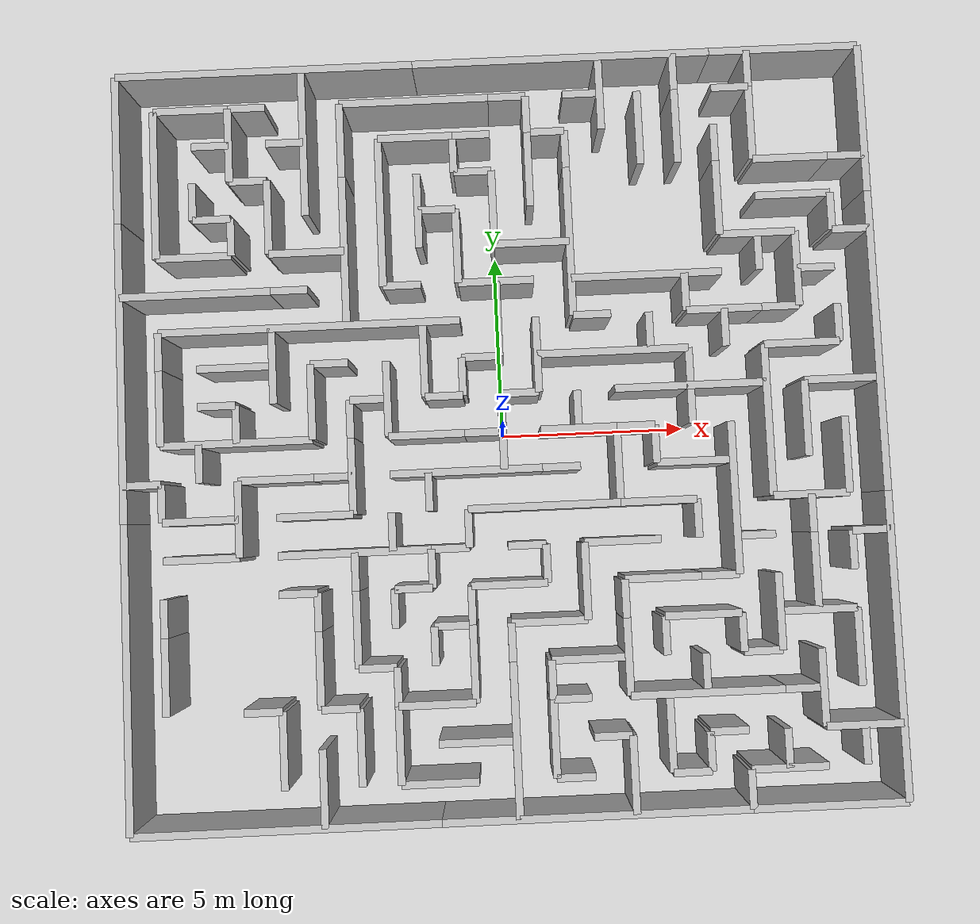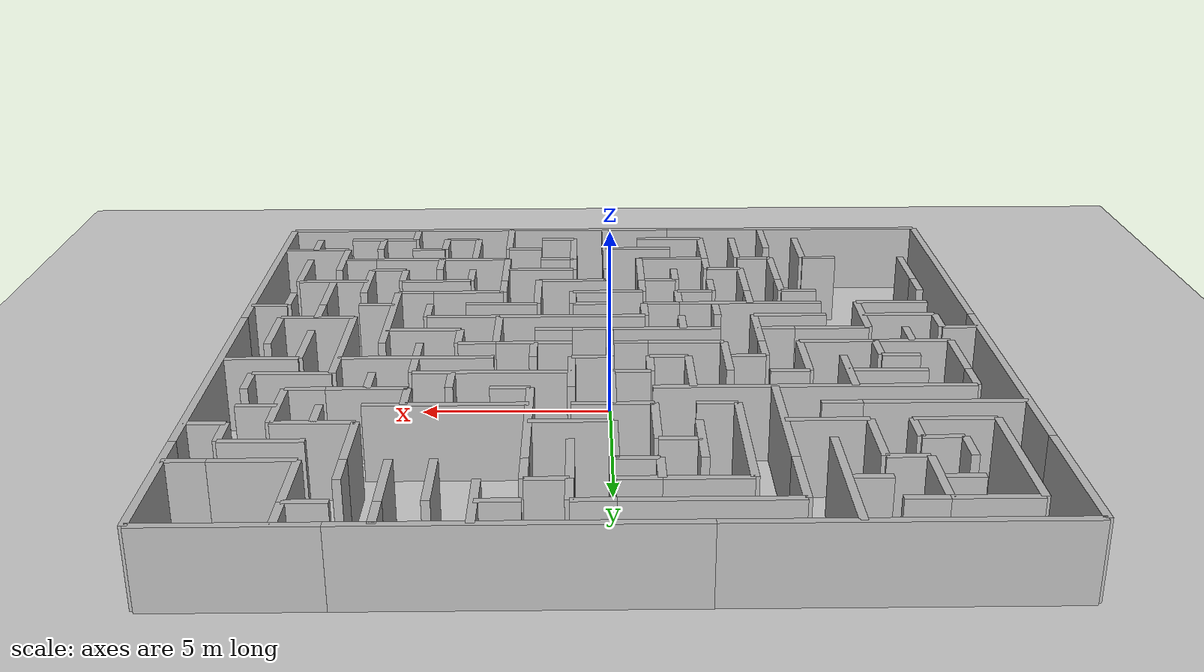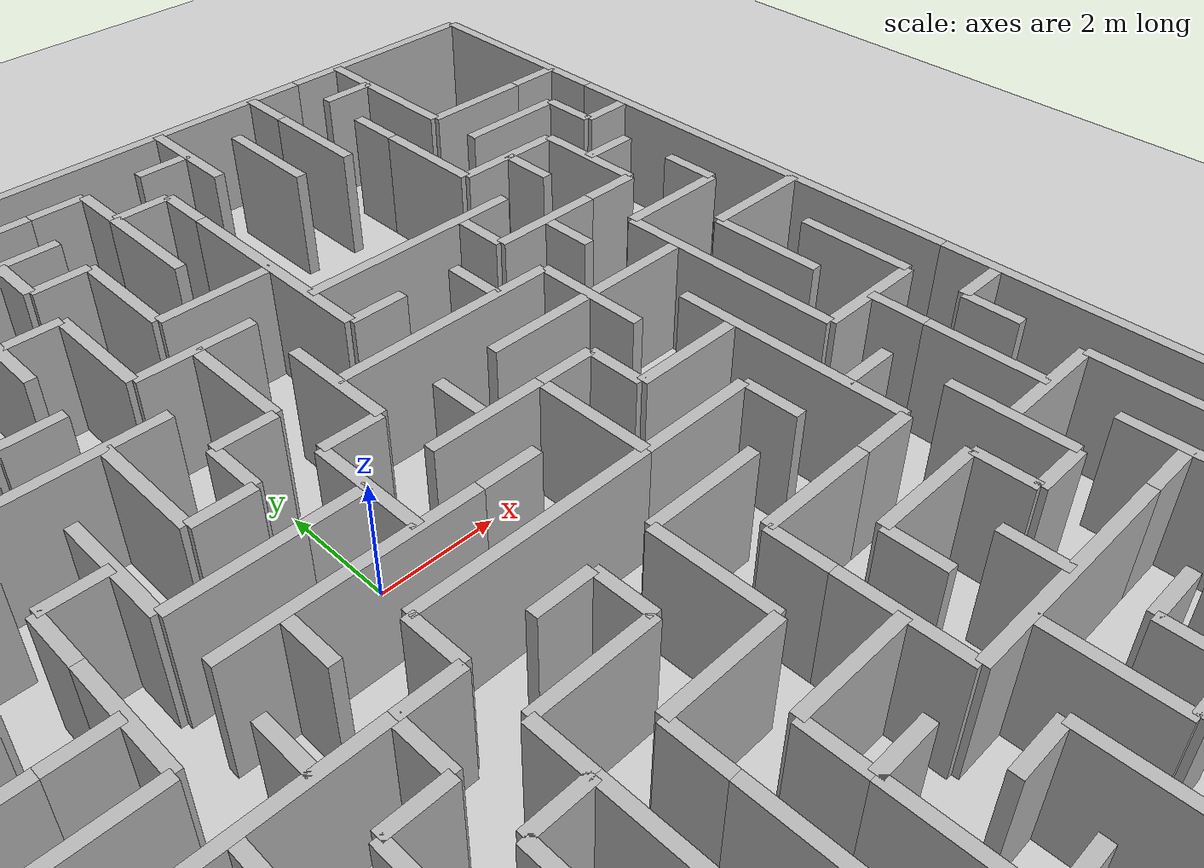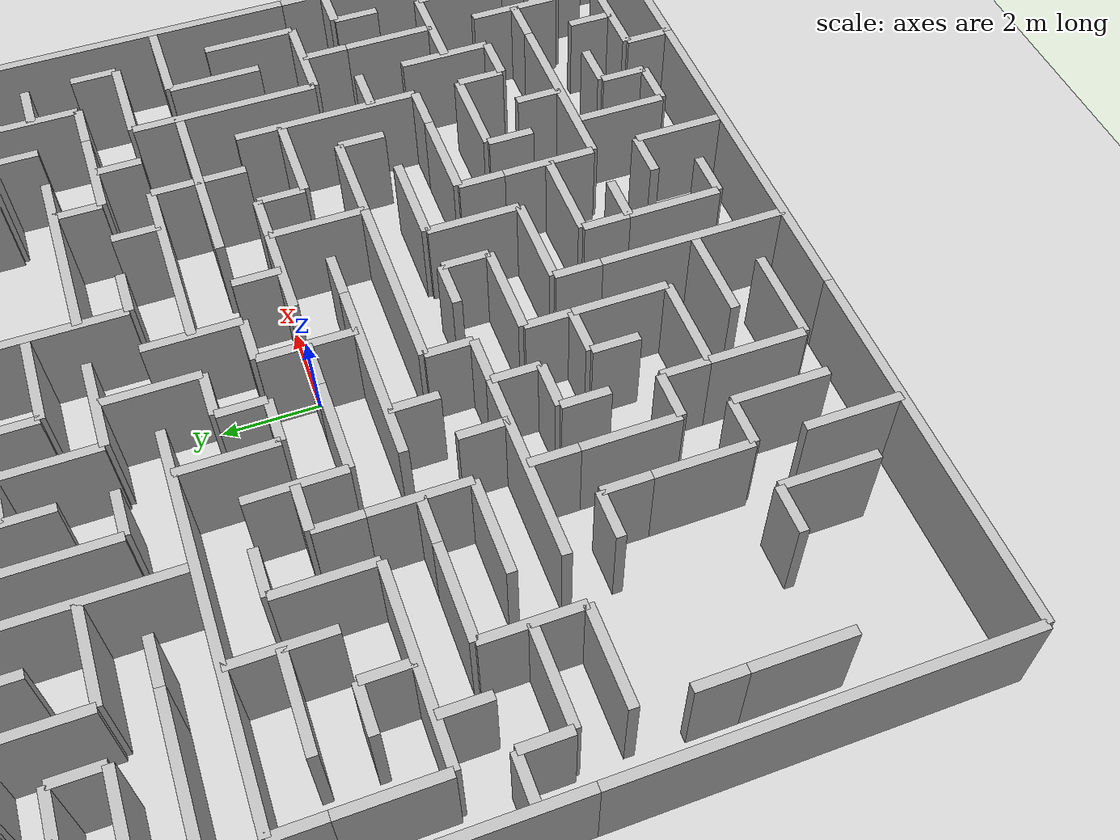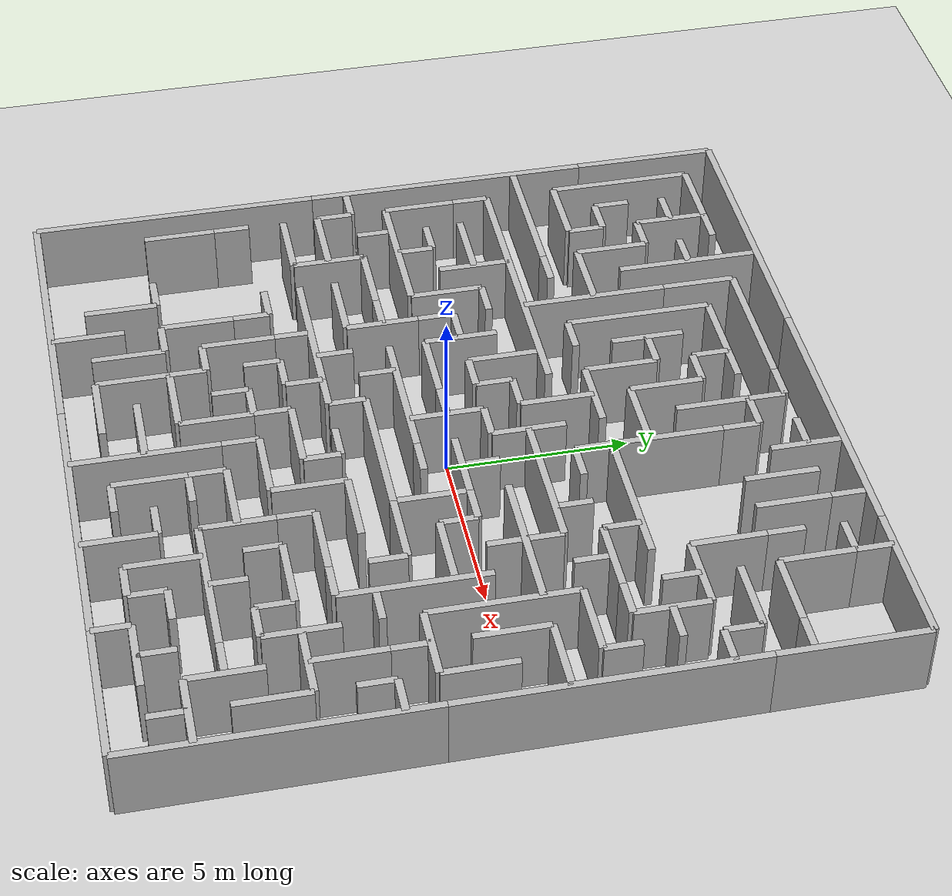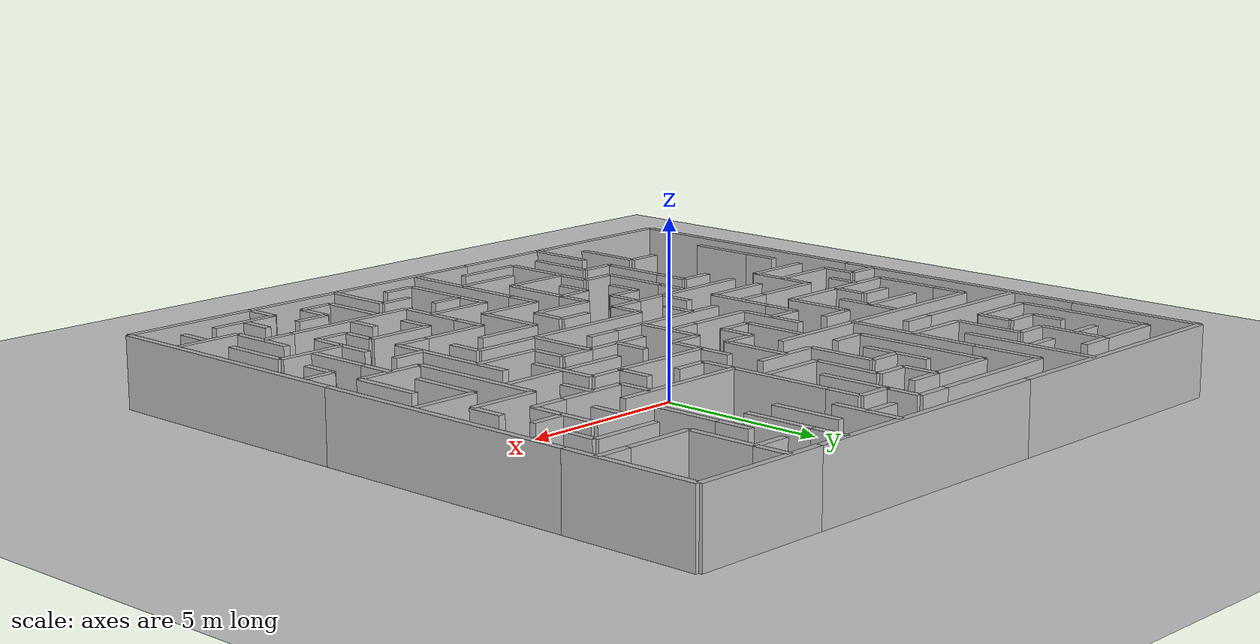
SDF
<?xml version="1.0"?>
<sdf version="1.8">
  <world name="maze_world">
    <physics name="1ms" type="ignored">
      <max_step_size>0.001</max_step_size>
      <real_time_factor>1.0</real_time_factor>
    </physics>
    <plugin name='ignition::gazebo::systems::Physics'
      filename='libignition-gazebo-physics-system.so' />
    <plugin name='ignition::gazebo::systems::UserCommands'
      filename='libignition-gazebo-user-commands-system.so' />
    <plugin name='ignition::gazebo::systems::SceneBroadcaster'
      filename='libignition-gazebo-scene-broadcaster-system.so' />
    <plugin name='ignition::gazebo::systems::Imu' filename='ignition-gazebo-imu-system' />
    <plugin name='ignition::gazebo::systems::Sensors' filename='ignition-gazebo-sensors-system'>
      <render_engine>ogre2</render_engine>
    </plugin>
    <include>
      <uri>https://fuel.gazebosim.org/1.0/OpenRobotics/models/Sun</uri>
    </include>
    <include>
      <name>ground</name>
      <uri>model://ground</uri>
    </include>
    <!-- Generated maze wall segments -->
    <include>
      <name>wall_8m_0</name>
      <uri>model://wall_8m</uri>
      <pose>-6.00 -10.00 0 0 0 0</pose>
    </include>
    <include>
      <name>wall_8m_1</name>
      <uri>model://wall_8m</uri>
      <pose>2.00 -10.00 0 0 0 0</pose>
    </include>
    <include>
      <name>wall_4m_2</name>
      <uri>model://wall_4m</uri>
      <pose>8.00 -10.00 0 0 0 0</pose>
    </include>
    <include>
      <name>wall_8m_3</name>
      <uri>model://wall_8m</uri>
      <pose>-6.00 10.00 0 0 0 0</pose>
    </include>
    <include>
      <name>wall_8m_4</name>
      <uri>model://wall_8m</uri>
      <pose>2.00 10.00 0 0 0 0</pose>
    </include>
    <include>
      <name>wall_4m_5</name>
      <uri>model://wall_4m</uri>
      <pose>8.00 10.00 0 0 0 0</pose>
    </include>
    <include>
      <name>wall_8m_6</name>
      <uri>model://wall_8m</uri>
      <pose>-10.00 -6.00 0 0 0 1.5708</pose>
    </include>
    <include>
      <name>wall_8m_7</name>
      <uri>model://wall_8m</uri>
      <pose>-10.00 2.00 0 0 0 1.5708</pose>
    </include>
    <include>
      <name>wall_4m_8</name>
      <uri>model://wall_4m</uri>
      <pose>-10.00 8.00 0 0 0 1.5708</pose>
    </include>
    <include>
      <name>wall_8m_9</name>
      <uri>model://wall_8m</uri>
      <pose>10.00 -6.00 0 0 0 1.5708</pose>
    </include>
    <include>
      <name>wall_8m_10</name>
      <uri>model://wall_8m</uri>
      <pose>10.00 2.00 0 0 0 1.5708</pose>
    </include>
    <include>
      <name>wall_4m_11</name>
      <uri>model://wall_4m</uri>
      <pose>10.00 8.00 0 0 0 1.5708</pose>
    </include>
    <include>
      <name>wall_2m_12</name>
      <uri>model://wall_2m</uri>
      <pose>-2.00 -9.00 0 0 0 0</pose>
    </include>
    <include>
      <name>wall_1m_13</name>
      <uri>model://wall_1m</uri>
      <pose>1.50 -9.00 0 0 0 0</pose>
    </include>
    <include>
      <name>wall_1m_14</name>
      <uri>model://wall_1m</uri>
      <pose>4.50 -9.00 0 0 0 0</pose>
    </include>
    <include>
      <name>wall_2m_15</name>
      <uri>model://wall_2m</uri>
      <pose>7.00 -9.00 0 0 0 0</pose>
    </include>
    <include>
      <name>wall_2m_16</name>
      <uri>model://wall_2m</uri>
      <pose>-1.00 -8.00 0 0 0 0</pose>
    </include>
    <include>
      <name>wall_1m_17</name>
      <uri>model://wall_1m</uri>
      <pose>2.50 -8.00 0 0 0 0</pose>
    </include>
    <include>
      <name>wall_1m_18</name>
      <uri>model://wall_1m</uri>
      <pose>5.50 -8.00 0 0 0 0</pose>
    </include>
    <include>
      <name>wall_2m_19</name>
      <uri>model://wall_2m</uri>
      <pose>9.00 -8.00 0 0 0 0</pose>
    </include>
    <include>
      <name>wall_1m_20</name>
      <uri>model://wall_1m</uri>
      <pose>-6.50 -7.00 0 0 0 0</pose>
    </include>
    <include>
      <name>wall_1m_21</name>
      <uri>model://wall_1m</uri>
      <pose>-4.50 -7.00 0 0 0 0</pose>
    </include>
    <include>
      <name>wall_2m_22</name>
      <uri>model://wall_2m</uri>
      <pose>-2.00 -7.00 0 0 0 0</pose>
    </include>
    <include>
      <name>wall_1m_23</name>
      <uri>model://wall_1m</uri>
      <pose>1.50 -7.00 0 0 0 0</pose>
    </include>
    <include>
      <name>wall_4m_24</name>
      <uri>model://wall_4m</uri>
      <pose>5.00 -7.00 0 0 0 0</pose>
    </include>
    <include>
      <name>wall_1m_25</name>
      <uri>model://wall_1m</uri>
      <pose>7.50 -7.00 0 0 0 0</pose>
    </include>
    <include>
      <name>wall_1m_26</name>
      <uri>model://wall_1m</uri>
      <pose>-3.50 -6.00 0 0 0 0</pose>
    </include>
    <include>
      <name>wall_2m_27</name>
      <uri>model://wall_2m</uri>
      <pose>2.00 -6.00 0 0 0 0</pose>
    </include>
    <include>
      <name>wall_1m_28</name>
      <uri>model://wall_1m</uri>
      <pose>6.50 -6.00 0 0 0 0</pose>
    </include>
    <include>
      <name>wall_1m_29</name>
      <uri>model://wall_1m</uri>
      <pose>-1.50 -5.00 0 0 0 0</pose>
    </include>
    <include>
      <name>wall_2m_30</name>
      <uri>model://wall_2m</uri>
      <pose>1.00 -5.00 0 0 0 0</pose>
    </include>
    <include>
      <name>wall_2m_31</name>
      <uri>model://wall_2m</uri>
      <pose>5.00 -5.00 0 0 0 0</pose>
    </include>
    <include>
      <name>wall_2m_32</name>
      <uri>model://wall_2m</uri>
      <pose>8.00 -5.00 0 0 0 0</pose>
    </include>
    <include>
      <name>wall_1m_33</name>
      <uri>model://wall_1m</uri>
      <pose>-5.50 -4.00 0 0 0 0</pose>
    </include>
    <include>
      <name>wall_1m_34</name>
      <uri>model://wall_1m</uri>
      <pose>-2.50 -4.00 0 0 0 0</pose>
    </include>
    <include>
      <name>wall_2m_35</name>
      <uri>model://wall_2m</uri>
      <pose>0.00 -4.00 0 0 0 0</pose>
    </include>
    <include>
      <name>wall_2m_36</name>
      <uri>model://wall_2m</uri>
      <pose>4.00 -4.00 0 0 0 0</pose>
    </include>
    <include>
      <name>wall_1m_37</name>
      <uri>model://wall_1m</uri>
      <pose>5.50 -4.00 0 0 0 0</pose>
    </include>
    <include>
      <name>wall_2m_38</name>
      <uri>model://wall_2m</uri>
      <pose>-8.00 -3.00 0 0 0 0</pose>
    </include>
    <include>
      <name>wall_4m_39</name>
      <uri>model://wall_4m</uri>
      <pose>-4.00 -3.00 0 0 0 0</pose>
    </include>
    <include>
      <name>wall_1m_40</name>
      <uri>model://wall_1m</uri>
      <pose>-1.50 -3.00 0 0 0 0</pose>
    </include>
    <include>
      <name>wall_1m_41</name>
      <uri>model://wall_1m</uri>
      <pose>0.50 -3.00 0 0 0 0</pose>
    </include>
    <include>
      <name>wall_2m_42</name>
      <uri>model://wall_2m</uri>
      <pose>3.00 -3.00 0 0 0 0</pose>
    </include>
    <include>
      <name>wall_1m_43</name>
      <uri>model://wall_1m</uri>
      <pose>6.50 -3.00 0 0 0 0</pose>
    </include>
    <include>
      <name>wall_1m_44</name>
      <uri>model://wall_1m</uri>
      <pose>9.50 -3.00 0 0 0 0</pose>
    </include>
    <include>
      <name>wall_2m_45</name>
      <uri>model://wall_2m</uri>
      <pose>-8.00 -2.00 0 0 0 0</pose>
    </include>
    <include>
      <name>wall_2m_46</name>
      <uri>model://wall_2m</uri>
      <pose>-5.00 -2.00 0 0 0 0</pose>
    </include>
    <include>
      <name>wall_4m_47</name>
      <uri>model://wall_4m</uri>
      <pose>1.00 -2.00 0 0 0 0</pose>
    </include>
    <include>
      <name>wall_2m_48</name>
      <uri>model://wall_2m</uri>
      <pose>4.00 -2.00 0 0 0 0</pose>
    </include>
    <include>
      <name>wall_2m_49</name>
      <uri>model://wall_2m</uri>
      <pose>8.00 -2.00 0 0 0 0</pose>
    </include>
    <include>
      <name>wall_1m_50</name>
      <uri>model://wall_1m</uri>
      <pose>-9.50 -1.00 0 0 0 0</pose>
    </include>
    <include>
      <name>wall_2m_51</name>
      <uri>model://wall_2m</uri>
      <pose>-6.00 -1.00 0 0 0 0</pose>
    </include>
    <include>
      <name>wall_1m_52</name>
      <uri>model://wall_1m</uri>
      <pose>-4.50 -1.00 0 0 0 0</pose>
    </include>
    <include>
      <name>wall_4m_53</name>
      <uri>model://wall_4m</uri>
      <pose>-1.00 -1.00 0 0 0 0</pose>
    </include>
    <include>
      <name>wall_1m_54</name>
      <uri>model://wall_1m</uri>
      <pose>1.50 -1.00 0 0 0 0</pose>
    </include>
    <include>
      <name>wall_2m_55</name>
      <uri>model://wall_2m</uri>
      <pose>5.00 -1.00 0 0 0 0</pose>
    </include>
    <include>
      <name>wall_4m_56</name>
      <uri>model://wall_4m</uri>
      <pose>-7.00 0.00 0 0 0 0</pose>
    </include>
    <include>
      <name>wall_2m_57</name>
      <uri>model://wall_2m</uri>
      <pose>-2.00 0.00 0 0 0 0</pose>
    </include>
    <include>
      <name>wall_1m_58</name>
      <uri>model://wall_1m</uri>
      <pose>-0.50 0.00 0 0 0 0</pose>
    </include>
    <include>
      <name>wall_2m_59</name>
      <uri>model://wall_2m</uri>
      <pose>2.00 0.00 0 0 0 0</pose>
    </include>
    <include>
      <name>wall_1m_60</name>
      <uri>model://wall_1m</uri>
      <pose>3.50 0.00 0 0 0 0</pose>
    </include>
    <include>
      <name>wall_1m_61</name>
      <uri>model://wall_1m</uri>
      <pose>-7.50 1.00 0 0 0 0</pose>
    </include>
    <include>
      <name>wall_1m_62</name>
      <uri>model://wall_1m</uri>
      <pose>-3.50 1.00 0 0 0 0</pose>
    </include>
    <include>
      <name>wall_1m_63</name>
      <uri>model://wall_1m</uri>
      <pose>-1.50 1.00 0 0 0 0</pose>
    </include>
    <include>
      <name>wall_1m_64</name>
      <uri>model://wall_1m</uri>
      <pose>0.50 1.00 0 0 0 0</pose>
    </include>
    <include>
      <name>wall_4m_65</name>
      <uri>model://wall_4m</uri>
      <pose>5.00 1.00 0 0 0 0</pose>
    </include>
    <include>
      <name>wall_2m_66</name>
      <uri>model://wall_2m</uri>
      <pose>9.00 1.00 0 0 0 0</pose>
    </include>
    <include>
      <name>wall_2m_67</name>
      <uri>model://wall_2m</uri>
      <pose>-7.00 2.00 0 0 0 0</pose>
    </include>
    <include>
      <name>wall_1m_68</name>
      <uri>model://wall_1m</uri>
      <pose>-4.50 2.00 0 0 0 0</pose>
    </include>
    <include>
      <name>wall_1m_69</name>
      <uri>model://wall_1m</uri>
      <pose>-0.50 2.00 0 0 0 0</pose>
    </include>
    <include>
      <name>wall_4m_70</name>
      <uri>model://wall_4m</uri>
      <pose>3.00 2.00 0 0 0 0</pose>
    </include>
    <include>
      <name>wall_2m_71</name>
      <uri>model://wall_2m</uri>
      <pose>8.00 2.00 0 0 0 0</pose>
    </include>
    <include>
      <name>wall_8m_72</name>
      <uri>model://wall_8m</uri>
      <pose>-5.00 3.00 0 0 0 0</pose>
    </include>
    <include>
      <name>wall_1m_73</name>
      <uri>model://wall_1m</uri>
      <pose>2.50 3.00 0 0 0 0</pose>
    </include>
    <include>
      <name>wall_2m_74</name>
      <uri>model://wall_2m</uri>
      <pose>6.00 3.00 0 0 0 0</pose>
    </include>
    <include>
      <name>wall_1m_75</name>
      <uri>model://wall_1m</uri>
      <pose>7.50 3.00 0 0 0 0</pose>
    </include>
    <include>
      <name>wall_4m_76</name>
      <uri>model://wall_4m</uri>
      <pose>-8.00 4.00 0 0 0 0</pose>
    </include>
    <include>
      <name>wall_1m_77</name>
      <uri>model://wall_1m</uri>
      <pose>-5.50 4.00 0 0 0 0</pose>
    </include>
    <include>
      <name>wall_1m_78</name>
      <uri>model://wall_1m</uri>
      <pose>-2.50 4.00 0 0 0 0</pose>
    </include>
    <include>
      <name>wall_2m_79</name>
      <uri>model://wall_2m</uri>
      <pose>0.00 4.00 0 0 0 0</pose>
    </include>
    <include>
      <name>wall_4m_80</name>
      <uri>model://wall_4m</uri>
      <pose>4.00 4.00 0 0 0 0</pose>
    </include>
    <include>
      <name>wall_1m_81</name>
      <uri>model://wall_1m</uri>
      <pose>8.50 4.00 0 0 0 0</pose>
    </include>
    <include>
      <name>wall_2m_82</name>
      <uri>model://wall_2m</uri>
      <pose>-8.00 5.00 0 0 0 0</pose>
    </include>
    <include>
      <name>wall_2m_83</name>
      <uri>model://wall_2m</uri>
      <pose>-5.00 5.00 0 0 0 0</pose>
    </include>
    <include>
      <name>wall_2m_84</name>
      <uri>model://wall_2m</uri>
      <pose>1.00 5.00 0 0 0 0</pose>
    </include>
    <include>
      <name>wall_2m_85</name>
      <uri>model://wall_2m</uri>
      <pose>7.00 5.00 0 0 0 0</pose>
    </include>
    <include>
      <name>wall_1m_86</name>
      <uri>model://wall_1m</uri>
      <pose>9.50 5.00 0 0 0 0</pose>
    </include>
    <include>
      <name>wall_1m_87</name>
      <uri>model://wall_1m</uri>
      <pose>-7.50 6.00 0 0 0 0</pose>
    </include>
    <include>
      <name>wall_1m_88</name>
      <uri>model://wall_1m</uri>
      <pose>-1.50 6.00 0 0 0 0</pose>
    </include>
    <include>
      <name>wall_2m_89</name>
      <uri>model://wall_2m</uri>
      <pose>8.00 6.00 0 0 0 0</pose>
    </include>
    <include>
      <name>wall_1m_90</name>
      <uri>model://wall_1m</uri>
      <pose>-6.50 7.00 0 0 0 0</pose>
    </include>
    <include>
      <name>wall_1m_91</name>
      <uri>model://wall_1m</uri>
      <pose>-0.50 7.00 0 0 0 0</pose>
    </include>
    <include>
      <name>wall_2m_92</name>
      <uri>model://wall_2m</uri>
      <pose>8.00 7.00 0 0 0 0</pose>
    </include>
    <include>
      <name>wall_1m_93</name>
      <uri>model://wall_1m</uri>
      <pose>9.50 7.00 0 0 0 0</pose>
    </include>
    <include>
      <name>wall_1m_94</name>
      <uri>model://wall_1m</uri>
      <pose>-7.50 8.00 0 0 0 0</pose>
    </include>
    <include>
      <name>wall_1m_95</name>
      <uri>model://wall_1m</uri>
      <pose>-5.50 8.00 0 0 0 0</pose>
    </include>
    <include>
      <name>wall_2m_96</name>
      <uri>model://wall_2m</uri>
      <pose>-2.00 8.00 0 0 0 0</pose>
    </include>
    <include>
      <name>wall_1m_97</name>
      <uri>model://wall_1m</uri>
      <pose>-0.50 8.00 0 0 0 0</pose>
    </include>
    <include>
      <name>wall_1m_98</name>
      <uri>model://wall_1m</uri>
      <pose>1.50 8.00 0 0 0 0</pose>
    </include>
    <include>
      <name>wall_2m_99</name>
      <uri>model://wall_2m</uri>
      <pose>-8.00 9.00 0 0 0 0</pose>
    </include>
    <include>
      <name>wall_1m_100</name>
      <uri>model://wall_1m</uri>
      <pose>-6.50 9.00 0 0 0 0</pose>
    </include>
    <include>
      <name>wall_4m_101</name>
      <uri>model://wall_4m</uri>
      <pose>-2.00 9.00 0 0 0 0</pose>
    </include>
    <include>
      <name>wall_1m_102</name>
      <uri>model://wall_1m</uri>
      <pose>0.50 9.00 0 0 0 0</pose>
    </include>
    <include>
      <name>wall_1m_103</name>
      <uri>model://wall_1m</uri>
      <pose>2.50 9.00 0 0 0 0</pose>
    </include>
    <include>
      <name>wall_1m_104</name>
      <uri>model://wall_1m</uri>
      <pose>6.50 9.00 0 0 0 0</pose>
    </include>
    <include>
      <name>wall_2m_105</name>
      <uri>model://wall_2m</uri>
      <pose>-9.00 -6.00 0 0 0 1.5708</pose>
    </include>
    <include>
      <name>wall_1m_106</name>
      <uri>model://wall_1m</uri>
      <pose>-9.00 -4.50 0 0 0 1.5708</pose>
    </include>
    <include>
      <name>wall_1m_107</name>
      <uri>model://wall_1m</uri>
      <pose>-9.00 -1.50 0 0 0 1.5708</pose>
    </include>
    <include>
      <name>wall_2m_108</name>
      <uri>model://wall_2m</uri>
      <pose>-9.00 1.00 0 0 0 1.5708</pose>
    </include>
    <include>
      <name>wall_1m_109</name>
      <uri>model://wall_1m</uri>
      <pose>-9.00 2.50 0 0 0 1.5708</pose>
    </include>
    <include>
      <name>wall_4m_110</name>
      <uri>model://wall_4m</uri>
      <pose>-9.00 7.00 0 0 0 1.5708</pose>
    </include>
    <include>
      <name>wall_1m_111</name>
      <uri>model://wall_1m</uri>
      <pose>-8.00 -0.50 0 0 0 1.5708</pose>
    </include>
    <include>
      <name>wall_1m_112</name>
      <uri>model://wall_1m</uri>
      <pose>-8.00 6.50 0 0 0 1.5708</pose>
    </include>
    <include>
      <name>wall_2m_113</name>
      <uri>model://wall_2m</uri>
      <pose>-7.00 -2.00 0 0 0 1.5708</pose>
    </include>
    <include>
      <name>wall_1m_114</name>
      <uri>model://wall_1m</uri>
      <pose>-7.00 0.50 0 0 0 1.5708</pose>
    </include>
    <include>
      <name>wall_1m_115</name>
      <uri>model://wall_1m</uri>
      <pose>-7.00 5.50 0 0 0 1.5708</pose>
    </include>
    <include>
      <name>wall_2m_116</name>
      <uri>model://wall_2m</uri>
      <pose>-7.00 8.00 0 0 0 1.5708</pose>
    </include>
    <include>
      <name>wall_2m_117</name>
      <uri>model://wall_2m</uri>
      <pose>-6.00 -8.00 0 0 0 1.5708</pose>
    </include>
    <include>
      <name>wall_2m_118</name>
      <uri>model://wall_2m</uri>
      <pose>-6.00 2.00 0 0 0 1.5708</pose>
    </include>
    <include>
      <name>wall_2m_119</name>
      <uri>model://wall_2m</uri>
      <pose>-6.00 6.00 0 0 0 1.5708</pose>
    </include>
    <include>
      <name>wall_2m_120</name>
      <uri>model://wall_2m</uri>
      <pose>-5.00 -9.00 0 0 0 1.5708</pose>
    </include>
    <include>
      <name>wall_2m_121</name>
      <uri>model://wall_2m</uri>
      <pose>-5.00 -6.00 0 0 0 1.5708</pose>
    </include>
    <include>
      <name>wall_1m_122</name>
      <uri>model://wall_1m</uri>
      <pose>-5.00 -4.50 0 0 0 1.5708</pose>
    </include>
    <include>
      <name>wall_2m_123</name>
      <uri>model://wall_2m</uri>
      <pose>-5.00 1.00 0 0 0 1.5708</pose>
    </include>
    <include>
      <name>wall_4m_124</name>
      <uri>model://wall_4m</uri>
      <pose>-5.00 8.00 0 0 0 1.5708</pose>
    </include>
    <include>
      <name>wall_2m_125</name>
      <uri>model://wall_2m</uri>
      <pose>-4.00 -8.00 0 0 0 1.5708</pose>
    </include>
    <include>
      <name>wall_2m_126</name>
      <uri>model://wall_2m</uri>
      <pose>-4.00 -5.00 0 0 0 1.5708</pose>
    </include>
    <include>
      <name>wall_1m_127</name>
      <uri>model://wall_1m</uri>
      <pose>-4.00 -3.50 0 0 0 1.5708</pose>
    </include>
    <include>
      <name>wall_2m_128</name>
      <uri>model://wall_2m</uri>
      <pose>-4.00 -1.00 0 0 0 1.5708</pose>
    </include>
    <include>
      <name>wall_1m_129</name>
      <uri>model://wall_1m</uri>
      <pose>-4.00 0.50 0 0 0 1.5708</pose>
    </include>
    <include>
      <name>wall_4m_130</name>
      <uri>model://wall_4m</uri>
      <pose>-4.00 5.00 0 0 0 1.5708</pose>
    </include>
    <include>
      <name>wall_2m_131</name>
      <uri>model://wall_2m</uri>
      <pose>-4.00 8.00 0 0 0 1.5708</pose>
    </include>
    <include>
      <name>wall_2m_132</name>
      <uri>model://wall_2m</uri>
      <pose>-3.00 -8.00 0 0 0 1.5708</pose>
    </include>
    <include>
      <name>wall_1m_133</name>
      <uri>model://wall_1m</uri>
      <pose>-3.00 -6.50 0 0 0 1.5708</pose>
    </include>
    <include>
      <name>wall_1m_134</name>
      <uri>model://wall_1m</uri>
      <pose>-3.00 -4.50 0 0 0 1.5708</pose>
    </include>
    <include>
      <name>wall_1m_135</name>
      <uri>model://wall_1m</uri>
      <pose>-3.00 -2.50 0 0 0 1.5708</pose>
    </include>
    <include>
      <name>wall_2m_136</name>
      <uri>model://wall_2m</uri>
      <pose>-3.00 1.00 0 0 0 1.5708</pose>
    </include>
    <include>
      <name>wall_4m_137</name>
      <uri>model://wall_4m</uri>
      <pose>-3.00 6.00 0 0 0 1.5708</pose>
    </include>
    <include>
      <name>wall_1m_138</name>
      <uri>model://wall_1m</uri>
      <pose>-2.00 -5.50 0 0 0 1.5708</pose>
    </include>
    <include>
      <name>wall_1m_139</name>
      <uri>model://wall_1m</uri>
      <pose>-2.00 -3.50 0 0 0 1.5708</pose>
    </include>
    <include>
      <name>wall_1m_140</name>
      <uri>model://wall_1m</uri>
      <pose>-2.00 -1.50 0 0 0 1.5708</pose>
    </include>
    <include>
      <name>wall_2m_141</name>
      <uri>model://wall_2m</uri>
      <pose>-2.00 2.00 0 0 0 1.5708</pose>
    </include>
    <include>
      <name>wall_2m_142</name>
      <uri>model://wall_2m</uri>
      <pose>-2.00 6.00 0 0 0 1.5708</pose>
    </include>
    <include>
      <name>wall_2m_143</name>
      <uri>model://wall_2m</uri>
      <pose>-1.00 -6.00 0 0 0 1.5708</pose>
    </include>
    <include>
      <name>wall_1m_144</name>
      <uri>model://wall_1m</uri>
      <pose>-1.00 -4.50 0 0 0 1.5708</pose>
    </include>
    <include>
      <name>wall_1m_145</name>
      <uri>model://wall_1m</uri>
      <pose>-1.00 -2.50 0 0 0 1.5708</pose>
    </include>
    <include>
      <name>wall_1m_146</name>
      <uri>model://wall_1m</uri>
      <pose>-1.00 1.50 0 0 0 1.5708</pose>
    </include>
    <include>
      <name>wall_2m_147</name>
      <uri>model://wall_2m</uri>
      <pose>-1.00 5.00 0 0 0 1.5708</pose>
    </include>
    <include>
      <name>wall_1m_148</name>
      <uri>model://wall_1m</uri>
      <pose>-1.00 7.50 0 0 0 1.5708</pose>
    </include>
    <include>
      <name>wall_4m_149</name>
      <uri>model://wall_4m</uri>
      <pose>0.00 -8.00 0 0 0 1.5708</pose>
    </include>
    <include>
      <name>wall_1m_150</name>
      <uri>model://wall_1m</uri>
      <pose>0.00 -5.50 0 0 0 1.5708</pose>
    </include>
    <include>
      <name>wall_2m_151</name>
      <uri>model://wall_2m</uri>
      <pose>0.00 0.00 0 0 0 1.5708</pose>
    </include>
    <include>
      <name>wall_2m_152</name>
      <uri>model://wall_2m</uri>
      <pose>0.00 3.00 0 0 0 1.5708</pose>
    </include>
    <include>
      <name>wall_2m_153</name>
      <uri>model://wall_2m</uri>
      <pose>0.00 6.00 0 0 0 1.5708</pose>
    </include>
    <include>
      <name>wall_2m_154</name>
      <uri>model://wall_2m</uri>
      <pose>1.00 -8.00 0 0 0 1.5708</pose>
    </include>
    <include>
      <name>wall_1m_155</name>
      <uri>model://wall_1m</uri>
      <pose>1.00 -6.50 0 0 0 1.5708</pose>
    </include>
    <include>
      <name>wall_1m_156</name>
      <uri>model://wall_1m</uri>
      <pose>1.00 -3.50 0 0 0 1.5708</pose>
    </include>
    <include>
      <name>wall_2m_157</name>
      <uri>model://wall_2m</uri>
      <pose>1.00 2.00 0 0 0 1.5708</pose>
    </include>
    <include>
      <name>wall_2m_158</name>
      <uri>model://wall_2m</uri>
      <pose>1.00 7.00 0 0 0 1.5708</pose>
    </include>
    <include>
      <name>wall_1m_159</name>
      <uri>model://wall_1m</uri>
      <pose>1.00 8.50 0 0 0 1.5708</pose>
    </include>
    <include>
      <name>wall_2m_160</name>
      <uri>model://wall_2m</uri>
      <pose>2.00 -4.00 0 0 0 1.5708</pose>
    </include>
    <include>
      <name>wall_1m_161</name>
      <uri>model://wall_1m</uri>
      <pose>2.00 0.50 0 0 0 1.5708</pose>
    </include>
    <include>
      <name>wall_4m_162</name>
      <uri>model://wall_4m</uri>
      <pose>2.00 5.00 0 0 0 1.5708</pose>
    </include>
    <include>
      <name>wall_1m_163</name>
      <uri>model://wall_1m</uri>
      <pose>2.00 7.50 0 0 0 1.5708</pose>
    </include>
    <include>
      <name>wall_2m_164</name>
      <uri>model://wall_2m</uri>
      <pose>3.00 -9.00 0 0 0 1.5708</pose>
    </include>
    <include>
      <name>wall_2m_165</name>
      <uri>model://wall_2m</uri>
      <pose>3.00 -6.00 0 0 0 1.5708</pose>
    </include>
    <include>
      <name>wall_1m_166</name>
      <uri>model://wall_1m</uri>
      <pose>3.00 -4.50 0 0 0 1.5708</pose>
    </include>
    <include>
      <name>wall_2m_167</name>
      <uri>model://wall_2m</uri>
      <pose>3.00 -1.00 0 0 0 1.5708</pose>
    </include>
    <include>
      <name>wall_2m_168</name>
      <uri>model://wall_2m</uri>
      <pose>3.00 9.00 0 0 0 1.5708</pose>
    </include>
    <include>
      <name>wall_2m_169</name>
      <uri>model://wall_2m</uri>
      <pose>4.00 -8.00 0 0 0 1.5708</pose>
    </include>
    <include>
      <name>wall_1m_170</name>
      <uri>model://wall_1m</uri>
      <pose>4.00 -5.50 0 0 0 1.5708</pose>
    </include>
    <include>
      <name>wall_1m_171</name>
      <uri>model://wall_1m</uri>
      <pose>4.00 -0.50 0 0 0 1.5708</pose>
    </include>
    <include>
      <name>wall_1m_172</name>
      <uri>model://wall_1m</uri>
      <pose>4.00 2.50 0 0 0 1.5708</pose>
    </include>
    <include>
      <name>wall_2m_173</name>
      <uri>model://wall_2m</uri>
      <pose>4.00 8.00 0 0 0 1.5708</pose>
    </include>
    <include>
      <name>wall_1m_174</name>
      <uri>model://wall_1m</uri>
      <pose>5.00 -8.50 0 0 0 1.5708</pose>
    </include>
    <include>
      <name>wall_1m_175</name>
      <uri>model://wall_1m</uri>
      <pose>5.00 -6.50 0 0 0 1.5708</pose>
    </include>
    <include>
      <name>wall_1m_176</name>
      <uri>model://wall_1m</uri>
      <pose>5.00 -2.50 0 0 0 1.5708</pose>
    </include>
    <include>
      <name>wall_2m_177</name>
      <uri>model://wall_2m</uri>
      <pose>5.00 1.00 0 0 0 1.5708</pose>
    </include>
    <include>
      <name>wall_1m_178</name>
      <uri>model://wall_1m</uri>
      <pose>5.00 3.50 0 0 0 1.5708</pose>
    </include>
    <include>
      <name>wall_2m_179</name>
      <uri>model://wall_2m</uri>
      <pose>5.00 8.00 0 0 0 1.5708</pose>
    </include>
    <include>
      <name>wall_1m_180</name>
      <uri>model://wall_1m</uri>
      <pose>5.00 9.50 0 0 0 1.5708</pose>
    </include>
    <include>
      <name>wall_1m_181</name>
      <uri>model://wall_1m</uri>
      <pose>6.00 -9.50 0 0 0 1.5708</pose>
    </include>
    <include>
      <name>wall_1m_182</name>
      <uri>model://wall_1m</uri>
      <pose>6.00 -5.50 0 0 0 1.5708</pose>
    </include>
    <include>
      <name>wall_4m_183</name>
      <uri>model://wall_4m</uri>
      <pose>6.00 -2.00 0 0 0 1.5708</pose>
    </include>
    <include>
      <name>wall_1m_184</name>
      <uri>model://wall_1m</uri>
      <pose>6.00 2.50 0 0 0 1.5708</pose>
    </include>
    <include>
      <name>wall_2m_185</name>
      <uri>model://wall_2m</uri>
      <pose>6.00 6.00 0 0 0 1.5708</pose>
    </include>
    <include>
      <name>wall_1m_186</name>
      <uri>model://wall_1m</uri>
      <pose>6.00 7.50 0 0 0 1.5708</pose>
    </include>
    <include>
      <name>wall_1m_187</name>
      <uri>model://wall_1m</uri>
      <pose>7.00 -8.50 0 0 0 1.5708</pose>
    </include>
    <include>
      <name>wall_2m_188</name>
      <uri>model://wall_2m</uri>
      <pose>7.00 -5.00 0 0 0 1.5708</pose>
    </include>
    <include>
      <name>wall_4m_189</name>
      <uri>model://wall_4m</uri>
      <pose>7.00 0.00 0 0 0 1.5708</pose>
    </include>
    <include>
      <name>wall_1m_190</name>
      <uri>model://wall_1m</uri>
      <pose>7.00 4.50 0 0 0 1.5708</pose>
    </include>
    <include>
      <name>wall_2m_191</name>
      <uri>model://wall_2m</uri>
      <pose>7.00 8.00 0 0 0 1.5708</pose>
    </include>
    <include>
      <name>wall_1m_192</name>
      <uri>model://wall_1m</uri>
      <pose>7.00 9.50 0 0 0 1.5708</pose>
    </include>
    <include>
      <name>wall_2m_193</name>
      <uri>model://wall_2m</uri>
      <pose>8.00 -7.00 0 0 0 1.5708</pose>
    </include>
    <include>
      <name>wall_2m_194</name>
      <uri>model://wall_2m</uri>
      <pose>8.00 -4.00 0 0 0 1.5708</pose>
    </include>
    <include>
      <name>wall_1m_195</name>
      <uri>model://wall_1m</uri>
      <pose>8.00 -2.50 0 0 0 1.5708</pose>
    </include>
    <include>
      <name>wall_2m_196</name>
      <uri>model://wall_2m</uri>
      <pose>8.00 0.00 0 0 0 1.5708</pose>
    </include>
    <include>
      <name>wall_2m_197</name>
      <uri>model://wall_2m</uri>
      <pose>8.00 4.00 0 0 0 1.5708</pose>
    </include>
    <include>
      <name>wall_1m_198</name>
      <uri>model://wall_1m</uri>
      <pose>9.00 -8.50 0 0 0 1.5708</pose>
    </include>
    <include>
      <name>wall_2m_199</name>
      <uri>model://wall_2m</uri>
      <pose>9.00 -6.00 0 0 0 1.5708</pose>
    </include>
    <include>
      <name>wall_1m_200</name>
      <uri>model://wall_1m</uri>
      <pose>9.00 -3.50 0 0 0 1.5708</pose>
    </include>
    <include>
      <name>wall_2m_201</name>
      <uri>model://wall_2m</uri>
      <pose>9.00 -1.00 0 0 0 1.5708</pose>
    </include>
    <include>
      <name>wall_1m_202</name>
      <uri>model://wall_1m</uri>
      <pose>9.00 2.50 0 0 0 1.5708</pose>
    </include>
    <include>
      <name>wall_1m_203</name>
      <uri>model://wall_1m</uri>
      <pose>9.00 5.50 0 0 0 1.5708</pose>
    </include>
  </world>
</sdf>

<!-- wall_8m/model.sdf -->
<sdf version="1.10">
  <model name="wall_8m">
    <static>true</static>
    <link name="wall_link">
      <visual name="wall_visual">
        <geometry>
          <mesh>
            <uri>model://wall_8m/meshes/wall_8m.dae</uri>
          </mesh>
        </geometry>
      </visual>

      <collision name="wall_collision">
        <pose>0 0 1 0 0 0</pose>
        <geometry>
          <box>
            <size>8 0.2 2</size>
          </box>
        </geometry>
      </collision>
    </link>
  </model>
</sdf>

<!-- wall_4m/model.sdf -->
<sdf version="1.10">
  <model name="wall_4m">
    <static>true</static>
    <link name="wall_link">
      <visual name="wall_visual">
        <geometry>
          <mesh>
            <uri>model://wall_4m/meshes/wall_4m.dae</uri>
          </mesh>
        </geometry>
      </visual>

      <collision name="wall_collision">
        <pose>0 0 1 0 0 0</pose>
        <geometry>
          <box>
            <size>4 0.2 2</size>
          </box>
        </geometry>
      </collision>
    </link>
  </model>
</sdf>

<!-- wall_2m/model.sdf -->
<sdf version="1.10">
  <model name="wall_2m">
    <static>true</static>
    <link name="wall_link">
      <visual name="wall_visual">
        <geometry>
          <mesh>
            <uri>model://wall_2m/meshes/wall_2m.dae</uri>
          </mesh>
        </geometry>
      </visual>

      <collision name="wall_collision">
        <pose>0 0 1 0 0 0</pose>
        <geometry>
          <box>
            <size>2 0.2 2</size>
          </box>
        </geometry>
      </collision>
    </link>
  </model>
</sdf>

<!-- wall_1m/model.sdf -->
<sdf version="1.10">
  <model name="wall_1m">
    <static>true</static>
    <link name="wall_link">
      <visual name="wall_visual">
        <geometry>
          <mesh>
            <uri>model://wall_1m/meshes/wall_1m.dae</uri>
          </mesh>
        </geometry>
      </visual>

      <collision name="wall_collision">
        <pose>0 0 1 0 0 0</pose>
        <geometry>
          <box>
            <size>1 0.2 2</size>
          </box>
        </geometry>
      </collision>
    </link>
  </model>
</sdf>
